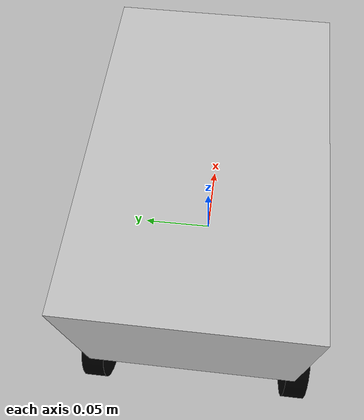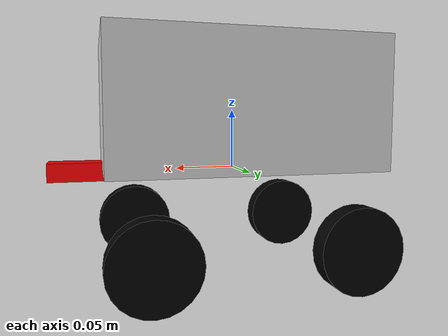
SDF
<?xml version="1.0" ?>
<sdf version="1.5">
  <model name="turtlebot3_burger">
    <pose>0.0 0.0 0.0 0.0 0.0 0.0</pose>

    <link name="base_footprint">
      <inertial>
        <inertia>
          <ixx>0.0000001</ixx>
          <ixy>0.0</ixy>
          <ixz>0.0</ixz>
          <iyy>0.0000001</iyy>
          <iyz>0.0</iyz>
          <izz>0.0000001</izz>
        </inertia>
        <mass>0.0001</mass>
      </inertial>
    </link>

    <link name="base_link">
      <inertial>
        <pose>0 0 0 0 0 0</pose>
        <inertia>
          <ixx>0.1</ixx>
          <ixy>0.0</ixy>
          <ixz>0.0</ixz>
          <iyy>0.1</iyy>
          <iyz>0.0</iyz>
          <izz>0.1</izz>
        </inertia>
        <mass>5.0</mass>
      </inertial>

      <collision name="base_collision">
        <pose>0 0 0.055 0 0 0</pose>
        <geometry>
          <box>
            <size>0.225 0.145 0.11</size>
          </box>
        </geometry>
      </collision>

      <visual name="base_visual">
        <pose>0 0 0.055 0 0 0</pose>
        <geometry>
          <box>
            <size>0.225 0.145 0.11</size>
          </box>
        </geometry>
        <material>
          <ambient>0.8 0.8 0.8 1</ambient>
          <diffuse>0.8 0.8 0.8 1</diffuse>
          <specular>0 0 0 0</specular>
          <emissive>0 0 0 1</emissive>
        </material>
      </visual>
    </link>

    <link name="imu_link">
      <inertial>
        <inertia>
          <ixx>0.0000001</ixx>
          <ixy>0.0</ixy>
          <ixz>0.0</ixz>
          <iyy>0.0000001</iyy>
          <iyz>0.0</iyz>
          <izz>0.0000001</izz>
        </inertia>
        <mass>0.01</mass>
      </inertial>

      <sensor name="tb3_imu" type="imu">
        <always_on>1</always_on>
        <update_rate>50</update_rate>
        <visualize>true</visualize>
        <topic>imu</topic>
        <enable_metrics>true</enable_metrics>
        <gz_frame_id>imu_link</gz_frame_id>
      </sensor>
    </link>

    <link name="base_scan">
      <inertial>
        <pose>0 0 0.055 0 0 0</pose>
        <inertia>
          <ixx>0.001</ixx>
          <ixy>0.000</ixy>
          <ixz>0.000</ixz>
          <iyy>0.001</iyy>
          <iyz>0.000</iyz>
          <izz>0.001</izz>
        </inertia>
        <mass>0.2</mass>
      </inertial>

      <collision name="lidar_sensor_collision">
        <pose>0 0 0.055 0 0 0</pose>
        <geometry>
          <cylinder>
            <radius>0.03</radius>
            <length>0.05</length>
          </cylinder>
        </geometry>
      </collision>

      <visual name="lidar_sensor_visual">
        <pose>0 0 0.055 0 0 0</pose>
        <geometry>
          <cylinder>
            <radius>0.03</radius>
            <length>0.05</length>
          </cylinder>
        </geometry>
        <material>
          <ambient>0 0 0.8 1</ambient>
          <diffuse>0 0 0.8 1</diffuse>
          <specular>0 0 0 0</specular>
          <emissive>0 0 0 1</emissive>
        </material>
      </visual>

      <sensor name="hls_lfcd_lds" type="gpu_lidar">
        <always_on>true</always_on>
        <visualize>true</visualize>
        <pose>0 0 0.055 0 0 0</pose>
        <update_rate>5</update_rate>
        <topic>scan</topic>
        <gz_frame_id>base_scan</gz_frame_id>
        <lidar>
          <scan>
            <horizontal>
              <samples>360</samples>
              <resolution>1.000000</resolution>
              <min_angle>-3.14159</min_angle>
              <max_angle>3.14159</max_angle>
            </horizontal>
          </scan>
          <range>
            <min>0.2</min>
            <max>30.0</max>
            <resolution>0.01</resolution>
          </range>
          <noise>
            <type>gaussian</type>
            <mean>0.0</mean>
            <stddev>0.01</stddev>
          </noise>
        </lidar>
      </sensor>
    </link>

    <link name="wheel_left_link">
      <inertial>
        <pose>0.08 0.08 -0.060 -1.5708 0 0</pose>
        <inertia>
          <ixx>0.01</ixx>
          <ixy>0.0</ixy>
          <ixz>0.0</ixz>
          <iyy>0.01</iyy>
          <iyz>0.0</iyz>
          <izz>0.01</izz>
        </inertia>
        <mass>0.5</mass>
      </inertial>

      <collision name="wheel_left_collision">
        <pose>0.08 0.08 -0.060 -1.5708 0 0</pose>
        <geometry>
          <cylinder>
            <radius>0.035</radius>
            <length>0.017</length>
          </cylinder>
        </geometry>
        <surface>
          <friction>
            <ode>
              <mu>1.0</mu>
              <mu2>1.0</mu2>
              <fdir1>1 0 0</fdir1>
              <slip1>0.0</slip1>
              <slip2>0.0</slip2>
            </ode>
          </friction>
          <contact>
            <ode>
              <kp>500000.0</kp>
              <kd>10.0</kd>
              <max_vel>0.1</max_vel>
              <min_depth>0.001</min_depth>
            </ode>
          </contact>
        </surface>
      </collision>

      <visual name="wheel_left_visual">
        <pose>0.08 0.08 -0.060 -1.5708 0 0</pose>
        <geometry>
          <cylinder>
            <radius>0.035</radius>
            <length>0.017</length>
          </cylinder>
        </geometry>
        <material>
          <ambient>0 0 0 1</ambient>
          <diffuse>0 0 0 1</diffuse>
          <specular>0 0 0 0</specular>
          <emissive>0 0 0 1</emissive>
        </material>
      </visual>
    </link>

    <link name="wheel_right_link">
      <inertial>
        <pose>0.08 -0.08 -0.060 -1.5708 0 0</pose>
        <inertia>
          <ixx>0.01</ixx>
          <ixy>0.0</ixy>
          <ixz>0.0</ixz>
          <iyy>0.01</iyy>
          <iyz>0.0</iyz>
          <izz>0.01</izz>
        </inertia>
        <mass>0.5</mass>
      </inertial>

      <collision name="wheel_right_collision">
        <pose>0.08 -0.08 -0.060 -1.5708 0 0</pose>
        <geometry>
          <cylinder>
            <radius>0.035</radius>
            <length>0.017</length>
          </cylinder>
        </geometry>
        <surface>
          <friction>
            <ode>
              <mu>1.0</mu>
              <mu2>1.0</mu2>
              <fdir1>1 0 0</fdir1>
              <slip1>0.0</slip1>
              <slip2>0.0</slip2>
            </ode>
          </friction>
          <contact>
            <ode>
              <kp>500000.0</kp>
              <kd>10.0</kd>
              <max_vel>0.1</max_vel>
              <min_depth>0.001</min_depth>
            </ode>
          </contact>
        </surface>
      </collision>

      <visual name="wheel_right_visual">
        <pose>0.08 -0.08 -0.060 -1.5708 0 0</pose>
        <geometry>
          <cylinder>
            <radius>0.035</radius>
            <length>0.017</length>
          </cylinder>
        </geometry>
        <material>
          <ambient>0 0 0 1</ambient>
          <diffuse>0 0 0 1</diffuse>
          <specular>0 0 0 0</specular>
          <emissive>0 0 0 1</emissive>
        </material>
      </visual>
    </link>

    <!-- Additional rear wheels replacing the caster -->
    <link name='caster_back_link'>
      <pose>-0.08 0.08 -0.060 -1.5708 0 0</pose>
      <inertial>
        <mass>0.5</mass>
        <inertia>
          <ixx>0.01</ixx>
          <ixy>0.000</ixy>
          <ixz>0.000</ixz>
          <iyy>0.01</iyy>
          <iyz>0.000</iyz>
          <izz>0.01</izz>
        </inertia>
      </inertial>
      <collision name='collision'>
        <geometry>
          <cylinder>
            <radius>0.035</radius>
            <length>0.017</length>
          </cylinder>
        </geometry>
        <surface>
          <contact>
            <ode>
              <soft_cfm>0</soft_cfm>
              <soft_erp>0.2</soft_erp>
              <kp>1e+7</kp>
              <kd>100</kd>
              <max_vel>1.0</max_vel>
              <min_depth>0.001</min_depth>
            </ode>
          </contact>
          <friction>
            <ode>
              <mu>1.0</mu>
              <mu2>1.0</mu2>
              <fdir1>1 0 0</fdir1>
              <slip1>0.0</slip1>
              <slip2>0.0</slip2>
            </ode>
          </friction>
        </surface>
      </collision>
      <visual name="visual">
        <geometry>
          <cylinder>
            <radius>0.035</radius>
            <length>0.017</length>
          </cylinder>
        </geometry>
        <material>
          <ambient>0 0 0 1</ambient>
          <diffuse>0 0 0 1</diffuse>
          <specular>0 0 0 0</specular>
          <emissive>0 0 0 1</emissive>
        </material>
      </visual>
    </link>

    <!-- Additional rear right wheel -->
    <link name='wheel_right_b_link'>
      <pose>-0.08 -0.08 -0.060 -1.5708 0 0</pose>
      <inertial>
        <mass>0.5</mass>
        <inertia>
          <ixx>0.01</ixx>
          <ixy>0.000</ixy>
          <ixz>0.000</ixz>
          <iyy>0.01</iyy>
          <iyz>0.000</iyz>
          <izz>0.01</izz>
        </inertia>
      </inertial>
      <collision name='collision'>
        <geometry>
          <cylinder>
            <radius>0.035</radius>
            <length>0.017</length>
          </cylinder>
        </geometry>
        <surface>
          <contact>
            <ode>
              <soft_cfm>0</soft_cfm>
              <soft_erp>0.2</soft_erp>
              <kp>1e+7</kp>
              <kd>100</kd>
              <max_vel>1.0</max_vel>
              <min_depth>0.001</min_depth>
            </ode>
          </contact>
          <friction>
            <ode>
              <mu>1.0</mu>
              <mu2>1.0</mu2>
              <fdir1>1 0 0</fdir1>
              <slip1>0.0</slip1>
              <slip2>0.0</slip2>
            </ode>
          </friction>
        </surface>
      </collision>
      <visual name="visual">
        <geometry>
          <cylinder>
            <radius>0.035</radius>
            <length>0.017</length>
          </cylinder>
        </geometry>
        <material>
          <ambient>0 0 0 1</ambient>
          <diffuse>0 0 0 1</diffuse>
          <specular>0 0 0 0</specular>
          <emissive>0 0 0 1</emissive>
        </material>
      </visual>
    </link>

    <link name="camera_link">
      <inertial>
        <pose>0.1125 0 0 0 0 0</pose>
        <inertia>
          <ixx>0.001</ixx>
          <ixy>0.0</ixy>
          <ixz>0.0</ixz>
          <iyy>0.001</iyy>
          <iyz>0.0</iyz>
          <izz>0.001</izz>
        </inertia>
        <mass>0.1</mass>
      </inertial>

      <collision name="camera_collision">
        <pose>0.1125 0 0 0 0 0</pose>
        <geometry>
          <box>
            <size>0.085 0.025 0.015</size>
          </box>
        </geometry>
      </collision>

      <visual name="camera_visual">
        <pose>0.1125 0 0 0 0 0</pose>
        <geometry>
          <box>
            <size>0.085 0.025 0.015</size>
          </box>
        </geometry>
        <material>
          <ambient>1 0 0 1</ambient>
          <diffuse>1 0 0 1</diffuse>
          <specular>0 0 0 0</specular>
          <emissive>0 0 0 1</emissive>
        </material>
      </visual>

      <sensor name="camera" type="camera">
        <always_on>true</always_on>
        <visualize>true</visualize>
        <update_rate>30</update_rate>
        <topic>camera/image_raw</topic>
        <gz_frame_id>camera_link</gz_frame_id>
        <camera name="intel_realsense_r200">
          <camera_info_topic>camera/camera_info</camera_info_topic>
          <optical_frame_id>camera_link_optical</optical_frame_id>
          <horizontal_fov>1.3962634</horizontal_fov>
          <image>
            <width>800</width>
            <height>600</height>
            <format>R8G8B8</format>
          </image>
          <clip>
            <near>0.02</near>
            <far>300</far>
          </clip>
          <noise>
            <type>gaussian</type>
            <mean>0.0</mean>
            <stddev>0.007</stddev>
          </noise>
        </camera>
      </sensor>
    </link>

    <joint name="base_joint" type="fixed">
      <parent>base_footprint</parent>
      <child>base_link</child>
      <pose>0.0 0.0 0.010 0 0 0</pose>
    </joint>

    <joint name="wheel_left_joint" type="revolute">
      <parent>base_link</parent>
      <child>wheel_left_link</child>
      <pose>0.08 0.08 -0.060 -1.5708 0 0</pose>
      <axis>
        <xyz>0 0 1</xyz>
        <limit>
          <effort>100</effort>
          <velocity>10</velocity>
          <lower>-inf</lower>
          <upper>inf</upper>
        </limit>
        <dynamics>
          <damping>1</damping>
          <friction>1</friction>
          <spring_reference>0</spring_reference>
          <spring_stiffness>0</spring_stiffness>
        </dynamics>
      </axis>
    </joint>

    <joint name="wheel_right_joint" type="revolute">
      <parent>base_link</parent>
      <child>wheel_right_link</child>
      <pose>0.08 -0.08 -0.060 -1.5708 0 0</pose>
      <axis>
        <xyz>0 0 1</xyz>
        <limit>
          <effort>100</effort>
          <velocity>10</velocity>
          <lower>-inf</lower>
          <upper>inf</upper>
        </limit>
        <dynamics>
          <damping>1</damping>
          <friction>1</friction>
          <spring_reference>0</spring_reference>
          <spring_stiffness>0</spring_stiffness>
        </dynamics>
      </axis>
    </joint>

    <joint name='caster_back_joint' type='revolute'>
      <parent>base_link</parent>
      <child>caster_back_link</child>
      <pose>-0.08 0.08 -0.060 -1.5708 0 0</pose>
      <axis>
        <xyz>0 0 1</xyz>
        <limit>
          <effort>100</effort>
          <velocity>10</velocity>
          <lower>-inf</lower>
          <upper>inf</upper>
        </limit>
        <dynamics>
          <damping>1</damping>
          <friction>1</friction>
          <spring_reference>0</spring_reference>
          <spring_stiffness>0</spring_stiffness>
        </dynamics>
      </axis>
    </joint>

    <joint name='wheel_right_b_joint' type='revolute'>
      <parent>base_link</parent>
      <child>wheel_right_b_link</child>
      <pose>-0.08 -0.08 -0.060 -1.5708 0 0</pose>
      <axis>
        <xyz>0 0 1</xyz>
        <limit>
          <effort>100</effort>
          <velocity>10</velocity>
          <lower>-inf</lower>
          <upper>inf</upper>
        </limit>
        <dynamics>
          <damping>1</damping>
          <friction>1</friction>
          <spring_reference>0</spring_reference>
          <spring_stiffness>0</spring_stiffness>
        </dynamics>
      </axis>
    </joint>

    <joint name="imu_joint" type="fixed">
      <parent>base_link</parent>
      <child>imu_link</child>
      <pose>0 0 0.055 0 0 0</pose>
      <axis>
        <xyz>0 0 1</xyz>
      </axis>
    </joint>

    <joint name="lidar_joint" type="fixed">
      <parent>base_link</parent>
      <child>base_scan</child>
      <pose>0 0 0.055 0 0 0</pose>
      <axis>
        <xyz>0 0 1</xyz>
      </axis>
    </joint>

    <joint name="camera_joint" type="fixed">
      <parent>base_link</parent>
      <child>camera_link</child>
      <pose>0.1125 0 0 0 0 0</pose>
      <axis>
        <xyz>0 1 0</xyz>
      </axis>
    </joint>

    <plugin filename="gz-sim-diff-drive-system" name="gz::sim::systems::DiffDrive">
      <!-- wheels -->
      <left_joint>wheel_left_joint</left_joint>
      <left_joint>caster_back_joint</left_joint>
      <right_joint>wheel_right_joint</right_joint>
      <right_joint>wheel_right_b_joint</right_joint>

      <!-- kinematics -->
      <wheel_separation>0.35</wheel_separation>
      <wheel_radius>0.035</wheel_radius>

      <!-- Control gains and limits -->
      <max_velocity>0.8</max_velocity>
      <max_linear_acceleration>1.0</max_linear_acceleration>
      <min_linear_acceleration>-1.0</min_linear_acceleration>
      <max_angular_acceleration>2.0</max_angular_acceleration>
      <min_angular_acceleration>-2.0</min_angular_acceleration>
      <max_linear_velocity>0.2</max_linear_velocity>
      <min_linear_velocity>-0.2</min_linear_velocity>
      <max_angular_velocity>1.0</max_angular_velocity>
      <min_angular_velocity>-1.0</min_angular_velocity>

      <topic>cmd_vel</topic>

      <odom_topic>odom</odom_topic>
      <frame_id>odom</frame_id>
      <tf_topic>tf</tf_topic>
      <odom_publisher_frequency>50</odom_publisher_frequency>
      <child_frame_id>base_footprint</child_frame_id>

    </plugin>

    <plugin filename="gz-sim-joint-state-publisher-system"
      name="gz::sim::systems::JointStatePublisher">
      <topic>joint_states</topic>
      <update_rate>50</update_rate>
      <joint_name>wheel_left_joint</joint_name>
      <joint_name>wheel_right_joint</joint_name>
      <joint_name>caster_back_joint</joint_name>
      <joint_name>wheel_right_b_joint</joint_name>
    </plugin>

  </model>
</sdf>
